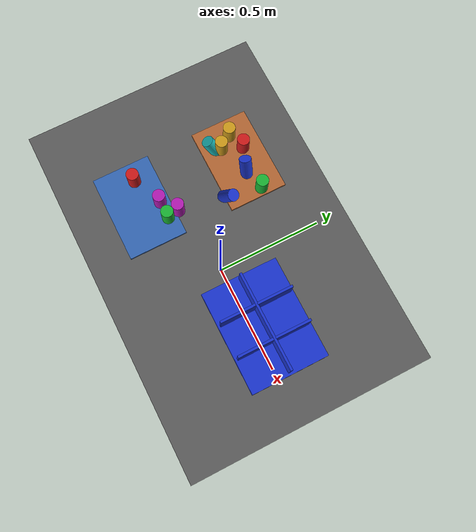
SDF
<?xml version="1.0" ?>
<sdf version="1.9">
  <!-- Standalone M1B scene.  The controller-backed Panda is spawned by the
       existing launch path; this file never alters the frozen M1A cube world. -->
  <world name="industrial_cylinder_v1">
    <physics name="bullet" type="bullet"><max_step_size>0.001</max_step_size><real_time_factor>1.0</real_time_factor></physics>
    <plugin name="gz::sim::systems::Physics" filename="gz-sim-physics-system"><engine><filename>gz-physics-bullet-featherstone-plugin</filename></engine></plugin>
    <plugin name="gz::sim::systems::UserCommands" filename="gz-sim-user-commands-system"/>
    <plugin name="gz::sim::systems::SceneBroadcaster" filename="gz-sim-scene-broadcaster-system"/>
    <plugin name="gz::sim::systems::Sensors" filename="gz-sim-sensors-system"><render_engine>ogre2</render_engine></plugin>
    <gravity>0 0 -9.81</gravity>
    <light type="directional" name="industrial_light"><pose>0 0 5 0 0 0</pose><direction>-0.3 0.2 -0.9</direction><diffuse>0.9 0.9 0.9 1</diffuse></light>
    <model name="industrial_work_table"><static>true</static><link name="link"><pose>0 0 0.4 0 0 0</pose><collision name="collision"><geometry><box><size>1.5 1.0 0.1</size></box></geometry></collision><visual name="visual"><geometry><box><size>1.5 1.0 0.1</size></box></geometry><material><diffuse>0.35 0.35 0.35 1</diffuse></material></visual></link></model>
    <model name="camera_fixture"><static>true</static><link name="camera_rgbd"><pose>-0.80 -0.80 1.40 0 0.77 0.93</pose><sensor name="front_rgbd" type="rgbd_camera"><always_on>1</always_on><update_rate>15</update_rate><topic>/xh/camera/rgbd</topic><camera><horizontal_fov>1.047</horizontal_fov><image><width>640</width><height>480</height><format>R8G8B8</format></image><clip><near>0.1</near><far>4.0</far></clip></camera></sensor></link></model>
    <model name="incoming_zone_a"><static>true</static><link name="link"><pose>-0.28 -0.22 0.455 0 0 0</pose><visual name="visual"><geometry><box><size>0.36 0.24 0.01</size></box></geometry><material><diffuse>0.2 0.4 0.7 1</diffuse></material></visual></link></model>
    <model name="incoming_zone_b"><static>true</static><link name="link"><pose>-0.28 0.22 0.455 0 0 0</pose><visual name="visual"><geometry><box><size>0.36 0.24 0.01</size></box></geometry><material><diffuse>0.7 0.4 0.2 1</diffuse></material></visual></link></model>
    <!-- M1B_RANDOM_PARTS_BEGIN -->
    <model name="cylinder_01"><pose>-0.3163 0.2605 0.5000 0.0000 0.0000 2.2805</pose><link name="link"><inertial><mass>0.06</mass></inertial><collision name="collision"><geometry><cylinder><radius>0.025</radius><length>0.09</length></cylinder></geometry></collision><visual name="visual"><geometry><cylinder><radius>0.025</radius><length>0.09</length></cylinder></geometry><material><diffuse>0.800 0.100 0.100 1</diffuse><specular>0.15 0.15 0.15 1</specular></material></visual></link></model>
    <model name="cylinder_02"><pose>-0.1846 -0.1372 0.5000 3.1416 0.0000 -2.7611</pose><link name="link"><inertial><mass>0.06</mass></inertial><collision name="collision"><geometry><cylinder><radius>0.025</radius><length>0.09</length></cylinder></geometry></collision><visual name="visual"><geometry><cylinder><radius>0.025</radius><length>0.09</length></cylinder></geometry><material><diffuse>0.100 0.700 0.200 1</diffuse><specular>0.15 0.15 0.15 1</specular></material></visual></link></model>
    <model name="cylinder_03"><pose>-0.2275 0.2284 0.4800 0.4500 -0.3000 -1.2654</pose><link name="link"><inertial><mass>0.06</mass></inertial><collision name="collision"><geometry><cylinder><radius>0.025</radius><length>0.09</length></cylinder></geometry></collision><visual name="visual"><geometry><cylinder><radius>0.025</radius><length>0.09</length></cylinder></geometry><material><diffuse>0.100 0.200 0.800 1</diffuse><specular>0.15 0.15 0.15 1</specular></material></visual></link></model>
    <model name="cylinder_04"><pose>-0.3477 0.1792 0.5000 0.0000 0.0000 -2.7173</pose><link name="link"><inertial><mass>0.06</mass></inertial><collision name="collision"><geometry><cylinder><radius>0.025</radius><length>0.09</length></cylinder></geometry></collision><visual name="visual"><geometry><cylinder><radius>0.025</radius><length>0.09</length></cylinder></geometry><material><diffuse>0.800 0.600 0.100 1</diffuse><specular>0.15 0.15 0.15 1</specular></material></visual></link></model>
    <model name="cylinder_05"><pose>-0.1932 -0.0884 0.5000 3.1416 0.0000 -1.9607</pose><link name="link"><inertial><mass>0.06</mass></inertial><collision name="collision"><geometry><cylinder><radius>0.025</radius><length>0.09</length></cylinder></geometry></collision><visual name="visual"><geometry><cylinder><radius>0.025</radius><length>0.09</length></cylinder></geometry><material><diffuse>0.700 0.100 0.700 1</diffuse><specular>0.15 0.15 0.15 1</specular></material></visual></link></model>
    <model name="cylinder_06"><pose>-0.3667 0.1500 0.4800 0.4500 -0.3000 -0.2683</pose><link name="link"><inertial><mass>0.06</mass></inertial><collision name="collision"><geometry><cylinder><radius>0.025</radius><length>0.09</length></cylinder></geometry></collision><visual name="visual"><geometry><cylinder><radius>0.025</radius><length>0.09</length></cylinder></geometry><material><diffuse>0.100 0.700 0.700 1</diffuse><specular>0.15 0.15 0.15 1</specular></material></visual></link></model>
    <model name="cylinder_07"><pose>-0.3817 -0.1919 0.5000 0.0000 0.0000 2.7108</pose><link name="link"><inertial><mass>0.06</mass></inertial><collision name="collision"><geometry><cylinder><radius>0.025</radius><length>0.09</length></cylinder></geometry></collision><visual name="visual"><geometry><cylinder><radius>0.025</radius><length>0.09</length></cylinder></geometry><material><diffuse>0.800 0.100 0.100 1</diffuse><specular>0.15 0.15 0.15 1</specular></material></visual></link></model>
    <model name="cylinder_08"><pose>-0.1309 0.2478 0.5000 3.1416 0.0000 -0.9795</pose><link name="link"><inertial><mass>0.06</mass></inertial><collision name="collision"><geometry><cylinder><radius>0.025</radius><length>0.09</length></cylinder></geometry></collision><visual name="visual"><geometry><cylinder><radius>0.025</radius><length>0.09</length></cylinder></geometry><material><diffuse>0.100 0.700 0.200 1</diffuse><specular>0.15 0.15 0.15 1</specular></material></visual></link></model>
    <model name="cylinder_09"><pose>-0.1541 0.1106 0.4800 0.4500 -0.3000 2.7428</pose><link name="link"><inertial><mass>0.06</mass></inertial><collision name="collision"><geometry><cylinder><radius>0.025</radius><length>0.09</length></cylinder></geometry></collision><visual name="visual"><geometry><cylinder><radius>0.025</radius><length>0.09</length></cylinder></geometry><material><diffuse>0.100 0.200 0.800 1</diffuse><specular>0.15 0.15 0.15 1</specular></material></visual></link></model>
    <model name="cylinder_10"><pose>-0.3865 0.2334 0.5000 0.0000 0.0000 2.9683</pose><link name="link"><inertial><mass>0.06</mass></inertial><collision name="collision"><geometry><cylinder><radius>0.025</radius><length>0.09</length></cylinder></geometry></collision><visual name="visual"><geometry><cylinder><radius>0.025</radius><length>0.09</length></cylinder></geometry><material><diffuse>0.800 0.600 0.100 1</diffuse><specular>0.15 0.15 0.15 1</specular></material></visual></link></model>
    <model name="cylinder_11"><pose>-0.2567 -0.1379 0.5000 3.1416 0.0000 -2.6714</pose><link name="link"><inertial><mass>0.06</mass></inertial><collision name="collision"><geometry><cylinder><radius>0.025</radius><length>0.09</length></cylinder></geometry></collision><visual name="visual"><geometry><cylinder><radius>0.025</radius><length>0.09</length></cylinder></geometry><material><diffuse>0.700 0.100 0.700 1</diffuse><specular>0.15 0.15 0.15 1</specular></material></visual></link></model>
    <!-- M1B_RANDOM_PARTS_END -->
    <model name="blue_partition_bin"><static>true</static><pose>0.36 0 0.45 0 0 0</pose><link name="link"><collision name="floor"><pose>0 0 0.01 0 0 0</pose><geometry><box><size>0.42 0.32 0.02</size></box></geometry></collision><visual name="floor_visual"><pose>0 0 0.01 0 0 0</pose><geometry><box><size>0.42 0.32 0.02</size></box></geometry><material><diffuse>0.1 0.2 0.8 1</diffuse></material></visual><visual name="row_divider"><pose>0 0 0.06 0 0 0</pose><geometry><box><size>0.40 0.01 0.10</size></box></geometry><material><diffuse>0.1 0.2 0.8 1</diffuse></material></visual><visual name="col_divider_a"><pose>-0.07 0 0.06 0 0 0</pose><geometry><box><size>0.01 0.30 0.10</size></box></geometry><material><diffuse>0.1 0.2 0.8 1</diffuse></material></visual><visual name="col_divider_b"><pose>0.07 0 0.06 0 0 0</pose><geometry><box><size>0.01 0.30 0.10</size></box></geometry><material><diffuse>0.1 0.2 0.8 1</diffuse></material></visual></link></model>
    <!-- Reserved only: second table, bin transport corridor, stackable-bin
         collision volume, and second arm mounting namespace. -->
  </world>
</sdf>
